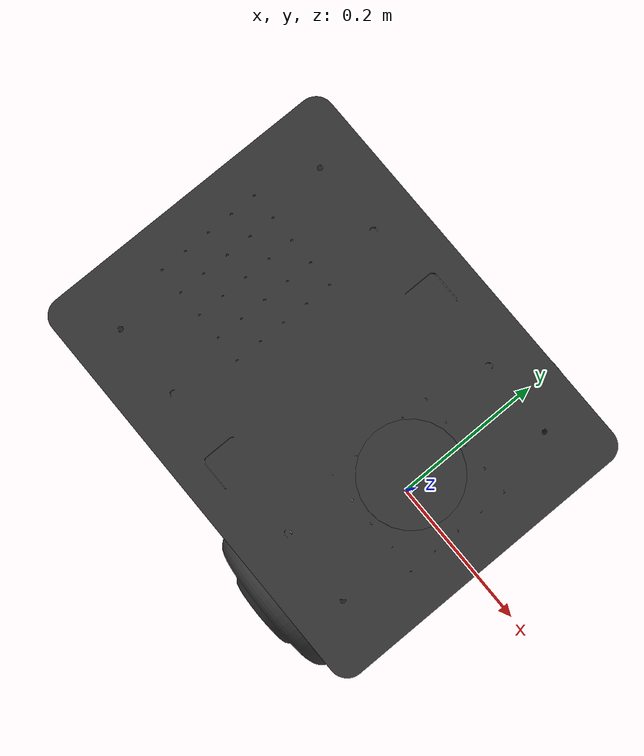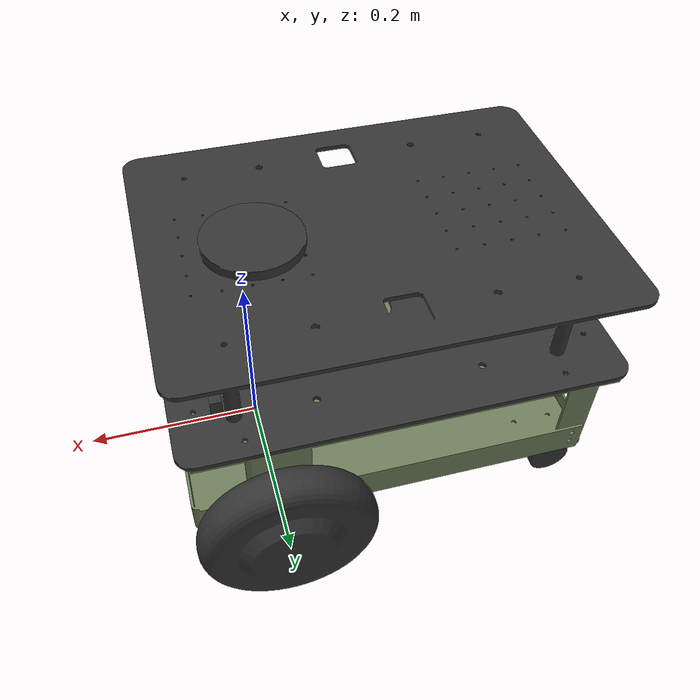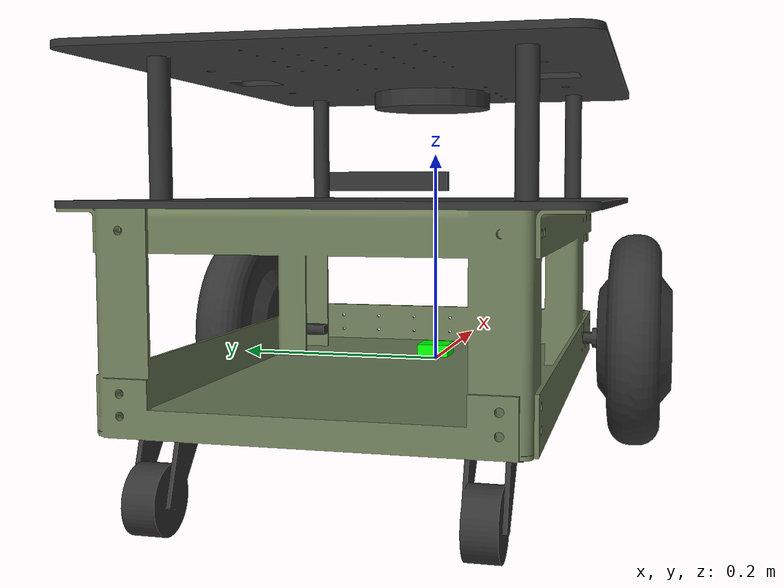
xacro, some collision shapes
<?xml version="1.0"?>
<robot name="RIA-E100" xmlns:xacro="http://www.ros.org/wiki/xacro">

  <xacro:include filename="$(find e100_description)/include/urdf/materials.urdf.xacro"/>
  <xacro:include filename="$(find e100_description)/include/urdf/property.urdf.xacro"/>
  <xacro:include filename="$(find e100_description)/include/urdf/wheels.urdf.xacro"/>
  <xacro:include filename="$(find e100_description)/include/urdf/rplidar.urdf.xacro"/>
  <xacro:include filename="$(find e100_description)/include/urdf/rgbd.urdf.xacro"/>
  <xacro:include filename="$(find e100_description)/include/urdf/imu.urdf.xacro"/>

  <link name="base_link">
    <visual>
      <geometry>
        <box size="0.03 0.03 0.03"/>
      </geometry>
      <material name="Green"/>
      <origin rpy="0 0 0" xyz="0 0 0"/>
    </visual>
    <collision>
      <geometry>
        <box size="0.03 0.03 0.03"/>
      </geometry>
      <material name="Green"/>
      <origin rpy="0 0 0" xyz="0 0 0"/>
    </collision>
  </link>

  <link name="RIA_BASE" >
    <inertial>
      <mass value="14"/>
      <origin rpy=" 0 0 0" xyz="0 0 0"/>
      <inertia  ixx="2.42811" ixy="0.00503" ixz="0.09703" iyy="2.52291" iyz="0.10757" izz="0.18274"/>
    </inertial>
    <visual>
      <geometry>
        <mesh filename="package://e100_description/include/meshes/base.stl" scale="0.001 0.001 0.001"/>
      </geometry>
      <material name="Army_Green"/>
      <origin rpy="${M_PI/2} 0 -${M_PI/2}" xyz="0.507 0.182 0"/>
    </visual>
    <collision>
      <geometry>
        <mesh filename="package://e100_description/include/meshes/base.stl" scale="0.001 0.001 0.001"/>
      </geometry>
      <origin rpy="${M_PI/2} 0 -${M_PI/2}" xyz="0.507 0.182 0"/>
    </collision>
  </link>

  <link name="RIA_TOP_FRAME">
    <inertial>
      <mass value="2"/>
      <origin rpy=" 0 0 0" xyz="0 0 0"/>
      <inertia  ixx="1.32565" ixy="0.01804" ixz="0.04757" iyy="1.21648" iyz="0.40330" izz="0.22242" />
    </inertial>
    <visual>
      <geometry>
        <mesh filename="package://e100_description/include/meshes/top_plate.stl" scale="0.001 0.001 0.001"/>
      </geometry>
      <material name="Dark_Grey"/>
      <origin rpy="${M_PI/2} 0 -${M_PI/2}" xyz="0.507 0.182 0"/>
    </visual>
    <collision>
      <geometry>
        <mesh filename="package://e100_description/include/meshes/top_plate.stl" scale="0.001 0.001 0.001"/>
       </geometry>
       <origin rpy="${M_PI/2} 0 -${M_PI/2}" xyz="0.507 0.182 0"/>
    </collision>
  </link>

  <joint name="base_link_to_RIA_BASE" type="fixed">
    <parent link="base_link"/>
    <child link="RIA_BASE"/>
    <origin rpy="0 0 0" xyz="-0.175 0 0"/>
  </joint>

  <joint name="RIA_BASE_to_RIA_TOP_FRAME" type="fixed">
    <parent link="RIA_BASE"/>
    <child link="RIA_TOP_FRAME"/>
    <origin rpy="0 0 0" xyz="0 0 0.03"/>
  </joint>

  <joint name="front_right_wheel_joint" type="continuous">
    <parent link="base_link"/>
    <child link="front_right_wheel"/>
    <origin rpy="0 0 0" xyz="0 -0.227 0.025"/>
    <axis xyz="0 1 0" rpy="0 0 0" />
    <limit effort="200" velocity="200"/>
    <joint_properties damping="0" friction="0"/>
  </joint>

  <joint name="front_left_wheel_joint" type="continuous">
    <parent link="base_link"/>
    <child link="front_left_wheel"/>
    <origin rpy="0 0 0" xyz="0 0.227 0.025"/>
    <axis xyz="0 1 0" rpy="0 0 0" />
    <limit effort="200" velocity="200"/>
    <joint_properties damping="0" friction="0"/>
  </joint>

  <joint name="rear_left_wheel_joint" type="fixed">
    <parent link="base_link"/>
    <child link="rear_left_wheel"/>
    <origin rpy="0 0 0" xyz="-0.3734 0.12 -0.072"/>
  </joint>

  <joint name="rear_right_wheel_joint" type="fixed">
    <parent link="base_link"/>
    <child link="rear_right_wheel"/>
    <origin rpy="0 0 0" xyz="-0.3734 -0.11 -0.072"/>
  </joint>

</robot>

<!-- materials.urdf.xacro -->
<robot name="RIA-R100-Materials" xmlns:xacro="http://www.ros.org/wiki/xacro">

  <material name="Dark_Grey">
    <color rgba="0.2 0.2 0.2 1"/>
  </material>

  <material name="Army_Green">
    <color rgba="0.4235 0.4862 0.3490 1"/>
  </material>

  <material name="Black">
    <color rgba="0 0 0 1"/>
  </material>

  <material name="Red">
    <color rgba="1 0 0 1"/>
  </material>

  <material name="Green">
    <color rgba="0 1 0 1"/>
  </material>

</robot>

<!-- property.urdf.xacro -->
<robot name="RIA-R100-properties" xmlns:xacro="http://www.ros.org/wiki/xacro">

  <xacro:property name="M_PI" value="3.1415926535897931"/>
  <xacro:property name="WHEEL_SIZE" value="0.2"/>
  <xacro:property name="WHEEL_X" value="0.26"/>
  <xacro:property name="WHEEL_Y" value="0.33"/>
  <xacro:property name="BASE_LINK_HEIGHT" value="0.11"/>
  <xacro:property name="WHEEL_MESH" value="wheel_new.stl"/>
  <xacro:property name="OMNI_WHEEL_MESH" value="omni_wheel.stl"/>

  <!-- Orbbec Astra Properties-->
  <property name="orbbec_x" value="0.380"/>
  <property name="orbbec_y" value="-0.045"/>
  <property name="orbbec_z" value="0.248"/>
  <property name="orbbec_depth_x_from_rgb" value="0"/>
  <property name="orbbec_depth_y_from_rgb" value="0.025"/>
  <property name="orbbec_depth_z_from_rgb" value="0"/>

  <!-- SICK Lidar Properties -->
  <property name="laser_x" value="0.420"/>
  <property name="laser_y" value="0.0"/>
  <property name="laser_z" value="0.108"/>

 </robot>

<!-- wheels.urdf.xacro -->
<robot name="RIA-E100-wheels" xmlns:xacro="http://www.ros.org/wiki/xacro">

  <link name="front_left_wheel">
    <inertial>
      <mass value="10"/>
      <origin rpy="0 0 0" xyz="0 0 0"/>
      <inertia ixx="0.005417" ixy="0.0" ixz="0.0" iyy="0.01" iyz="0.0" izz="0.005417"/>
    </inertial>
    <visual>
      <geometry>
        <mesh filename="package://e100_description/include/meshes/${WHEEL_MESH}" scale="0.001 0.001 0.001"/>
      </geometry>
      <material name="Dark_Grey"/>
      <origin rpy="0 0 -${M_PI/2}" xyz="-0.099 0.0 -0.099"/>
    </visual>
    <collision>
      <geometry>
        <mesh filename="package://e100_description/include/meshes/${WHEEL_MESH}" scale="0.001 0.001 0.001"/>
      </geometry>
      <origin rpy="0 0 -${M_PI/2}" xyz="-0.099 0.0 -0.099"/>
    </collision>
  </link>

  <link name="front_right_wheel">
    <inertial>
      <mass value="10"/>
      <origin rpy="0 0 0" xyz="0 0 0"/>
      <inertia ixx="0.005417" ixy="0.0" ixz="0.0" iyy="0.01" iyz="0.0" izz="0.005417"/>
    </inertial>
    <visual>
      <geometry>
        <mesh filename="package://e100_description/include/meshes/${WHEEL_MESH}" scale="0.001 0.001 0.001"/>
      </geometry>
      <material name="Dark_Grey"/>
      <origin rpy="0 0 ${M_PI/2}" xyz="0.099 0.0 -0.099"/>
    </visual>
    <collision>
      <geometry>
        <mesh filename="package://e100_description/include/meshes/${WHEEL_MESH}" scale="0.001 0.001 0.001"/>
      </geometry>
      <origin rpy="0 0 ${M_PI/2}" xyz="0.099 0.0 -0.099"/>
    </collision>
  </link>

  <link name="rear_left_wheel">
    <inertial>
      <mass value="0.5"/>
      <origin rpy="0 0 0" xyz="0 0 0"/>
      <inertia ixx="0.000766" ixy="0.000231" ixz="0.000068" iyy="0.000552" iyz="0.000120" izz="0.000847"/>
    </inertial>
    <visual>
      <geometry>
        <mesh filename="package://e100_description/include/meshes/${OMNI_WHEEL_MESH}" scale="0.001 0.001 0.001"/>
      </geometry>
      <material name="Dark_Grey"/>
      <origin rpy="${M_PI/2} 0 0" xyz="0 0.0257 0"/>
    </visual>
    <collision>
      <geometry>
        <mesh filename="package://e100_description/include/meshes/${OMNI_WHEEL_MESH}" scale="0.001 0.001 0.001"/>
      </geometry>
      <origin rpy="${M_PI/2} 0 0" xyz="0 0.0257 0"/>
    </collision>
  </link>

  <link name="rear_right_wheel">
    <inertial>
      <mass value="0.5"/>
      <origin rpy="0 0 0" xyz="0 0 0"/>
      <inertia ixx="0.000766" ixy="0.000231" ixz="0.000068" iyy="0.000552" iyz="0.000120" izz="0.000847"/>
    </inertial>
    <visual>
      <geometry>
        <mesh filename="package://e100_description/include/meshes/${OMNI_WHEEL_MESH}" scale="0.001 0.001 0.001"/>
      </geometry>
      <material name="Dark_Grey"/>
      <origin rpy="${M_PI/2} 0 0" xyz="0 0.0257 0"/>
    </visual>
    <collision>
      <geometry>
        <mesh filename="package://e100_description/include/meshes/${OMNI_WHEEL_MESH}" scale="0.001 0.001 0.001"/>
      </geometry>
      <origin rpy="${M_PI/2} 0 0" xyz="0 0.0257 0"/>
    </collision>
  </link>

</robot>

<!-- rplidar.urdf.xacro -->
<robot name="RIA-E100_LIDAR" xmlns:xacro="http://www.ros.org/wiki/xacro">

  <xacro:arg name="laser_visual"  default="false"/>

  <link name="laser_link">
    <visual>
      <origin xyz="0 0 0" rpy="0 0 0"/>
      <geometry>
        <mesh filename="package://e100_description/include/meshes/sensors/rplidar_a2.dae"/>
      </geometry>
      <material name="Dark_Grey"/>
    </visual>
    <collision>
      <origin xyz="0.015 0 -0.0065" rpy="0 0 0"/>
      <geometry>
        <cylinder length="0.0315" radius="0.055"/>
      </geometry>
    </collision>
    <inertial>
      <mass value="0.114" />
      <origin xyz="0 0 0" />
      <inertia ixx="0.001" ixy="0.0" ixz="0.0" iyy="0.001" iyz="0.0" izz="0.001" />
    </inertial>
  </link>

   <joint name="base_link_to_laser_link" type="fixed">
      <parent link="base_link"/>
      <child link="laser_link"/>
      <origin rpy="0 0 ${M_PI}" xyz="0 0 0.265"/>
   </joint>

  <gazebo reference="laser_link">
    <material>Gazebo/FlatBlack</material>
    <sensor type="ray" name="lidar">
      <pose>0 0 0 0 0 0</pose>
      <visualize>$(arg laser_visual)</visualize>
      <update_rate>5</update_rate>
      <ray>
        <scan>
          <horizontal>
            <samples>360</samples>
            <resolution>1</resolution>
            <min_angle>0.0</min_angle>
            <max_angle>6.28319</max_angle>
          </horizontal>
        </scan>
        <range>
          <min>0.120</min>
          <max>10</max>
          <resolution>0.015</resolution>
        </range>
        <noise>
          <type>gaussian</type>
          <mean>0.0</mean>
          <stddev>0.01</stddev>
        </noise>
      </ray>
      <plugin name="gazebo_ros_lidar_controller" filename="libgazebo_ros_laser.so">
        <topicName>scan</topicName>
        <frameName>laser_link</frameName>
      </plugin>
    </sensor>
  </gazebo>

</robot>

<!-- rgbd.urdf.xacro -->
<robot name="RIA-E100_RGBD" xmlns:xacro="http://www.ros.org/wiki/xacro">

  <xacro:arg name="camera_visual"  default="true"/>
  <xacro:property name="M_PI" value="3.1415926535897931" />

  <link name="camera_link">
    <visual>
      <origin xyz="0 0 0" rpy="0 0 0"/>
      <geometry>
        <mesh filename="package://e100_description/include/meshes/sensors/orbbec_astra.stl"/>
      </geometry>
      <material name="Dark_Grey"/>
    </visual>
    <collision>
      <origin xyz="0.003 0.065 0.007" rpy="0 0 0"/>
      <geometry>
        <box size="0.012 0.132 0.020"/>
      </geometry>
    </collision>
  </link>

  <link name="camera_rgb_frame"/>

  <link name="camera_rgb_optical_frame"/>

  <link name="camera_depth_frame"/>

  <link name="camera_depth_optical_frame"/>

  <joint name="base_link_to_camera_link" type="fixed">
    <origin xyz="0.05 0 0.168" rpy="0 0 0"/>
    <parent link="base_link"/>
    <child link="camera_link"/>
  </joint>

  <joint name="camera_rgb_joint" type="fixed">
    <origin xyz="0.0 -0.0125 -0.0150" rpy="0 0 0"/>
    <parent link="camera_link"/>
    <child link="camera_rgb_frame"/>
  </joint>

  <joint name="camera_rgb_optical_joint" type="fixed">
    <origin xyz="0 0 0" rpy="0 0 0"/>
    <parent link="camera_rgb_frame"/>
    <child link="camera_rgb_optical_frame"/>
  </joint>

  <joint name="camera_depth_joint" type="fixed">
    <origin xyz="0.0 -0.0125 -0.0150" rpy="0 0 0"/>
    <parent link="camera_link"/>
    <child link="camera_depth_frame"/>
  </joint>

  <joint name="camera_depth_optical_joint" type="fixed">
    <origin xyz="0 0 0" rpy="0 0 0"/>
    <parent link="camera_depth_frame"/>
    <child link="camera_depth_optical_frame"/>
  </joint>

  <sensor_orbbec_astra_gazebo/>

  <xacro:macro name="sensor_orbbec_astra_gazebo">
  <gazebo reference="camera_rgb_frame">
    <sensor type="depth" name="orbbec_astra">
      <always_on>true</always_on>
      <visualize>$(arg camera_visual)</visualize>
      <camera>
        <horizontal_fov>1.3439</horizontal_fov>
        <image>
          <width>1920</width>
          <height>1080</height>
          <format>R8G8B8</format>
        </image>
        <depth_camera></depth_camera>
        <clip>
          <near>0.03</near>
          <far>100</far>
        </clip>
      </camera>
      <plugin name="camera_controller" filename="libgazebo_ros_openni_kinect.so">
        <baseline>0.2</baseline>
        <alwaysOn>true</alwaysOn>
        <updateRate>30.0</updateRate>
        <cameraName>camera</cameraName>
        <frameName>camera_rgb_optical_frame</frameName>
        <imageTopicName>rgb/image_raw</imageTopicName>
        <depthImageTopicName>depth/image_raw</depthImageTopicName>
        <pointCloudTopicName>depth/points</pointCloudTopicName>
        <cameraInfoTopicName>rgb/camera_info</cameraInfoTopicName>
        <depthImageCameraInfoTopicName>depth/camera_info</depthImageCameraInfoTopicName>
        <pointCloudCutoff>0.4</pointCloudCutoff>
        <hackBaseline>0.07</hackBaseline>
        <distortionK1>0.0</distortionK1>
        <distortionK2>0.0</distortionK2>
        <distortionK3>0.0</distortionK3>
        <distortionT1>0.0</distortionT1>
        <distortionT2>0.0</distortionT2>
        <CxPrime>0.0</CxPrime>
        <Cx>0.0</Cx>
        <Cy>0.0</Cy>
        <focalLength>0</focalLength>
        <hackBaseline>0</hackBaseline>
      </plugin>
    </sensor>
  </gazebo>
  </xacro:macro>

</robot>

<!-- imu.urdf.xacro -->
<robot name="RIA-R100-IMU" xmlns:xacro="http://www.ros.org/wiki/xacro">

  <link name="imu_link"/>

  <joint name="base_link_to_imu_link" type="fixed">
      <parent link="base_link"/>
      <child link="imu_link"/>
      <origin rpy="0 0 0" xyz="0 -0.12 0.1"/>
   </joint>

  <gazebo reference="imu_link">
    <sensor type="imu" name="imu">
      <always_on>true</always_on>
      <visualize>false</visualize>
    </sensor>
    <material>Gazebo/Grey</material>
  </gazebo>

  <gazebo>
    <plugin name="imu_plugin" filename="libgazebo_ros_imu.so">
      <alwaysOn>true</alwaysOn>
      <bodyName>imu_link</bodyName>
      <frameName>imu_link</frameName>
      <topicName>imu/data</topicName>
      <serviceName>imu/service</serviceName>
      <gaussianNoise>0.0</gaussianNoise>
      <updateRate>200</updateRate>
      <imu>
        <noise>
          <type>gaussian</type>
          <rate>
            <mean>0.0</mean>
            <stddev>2e-4</stddev>
            <bias_mean>0.0000075</bias_mean>
            <bias_stddev>0.0000008</bias_stddev>
          </rate>
          <accel>
            <mean>0.0</mean>
            <stddev>1.7e-2</stddev>
            <bias_mean>0.1</bias_mean>
            <bias_stddev>0.001</bias_stddev>
          </accel>
        </noise>
      </imu>
    </plugin>
  </gazebo>

</robot>
